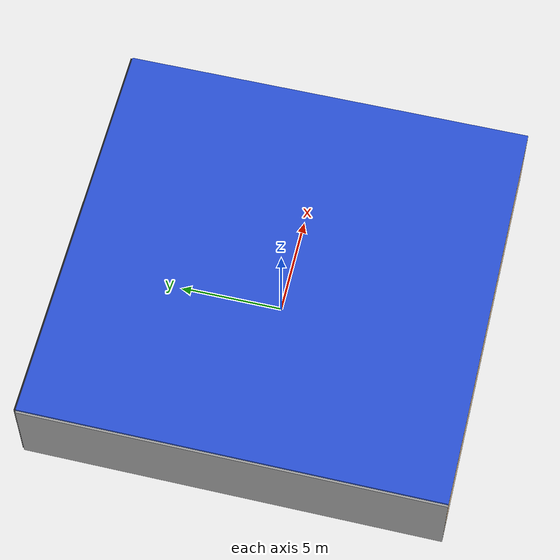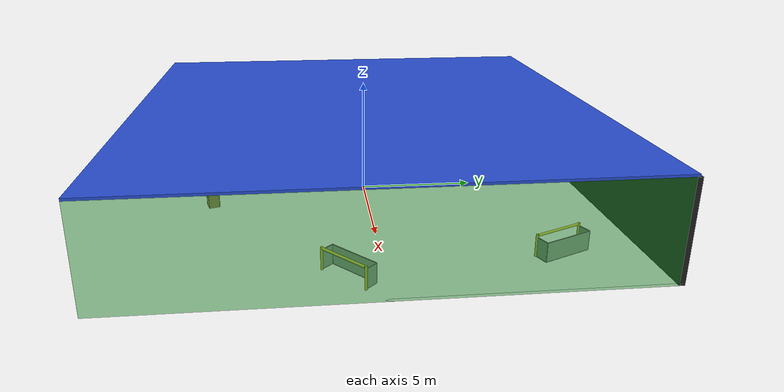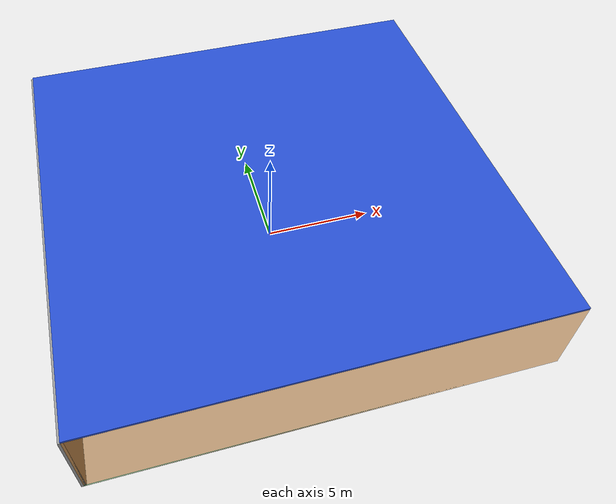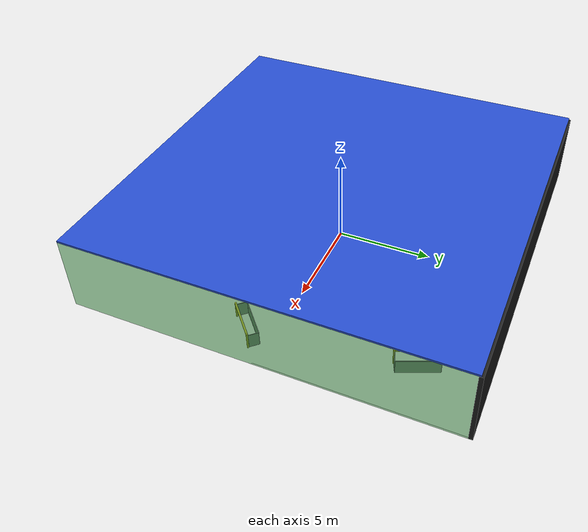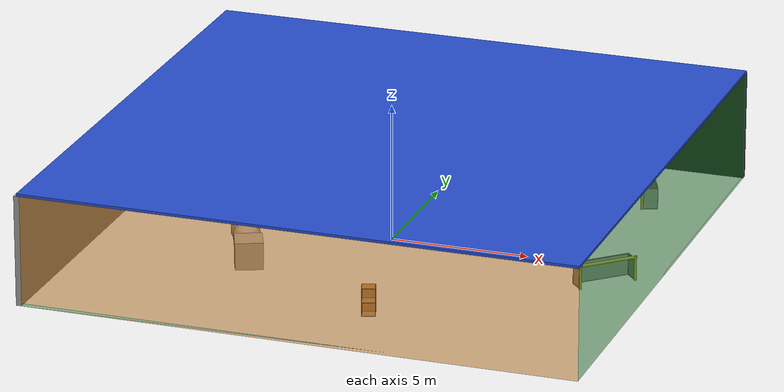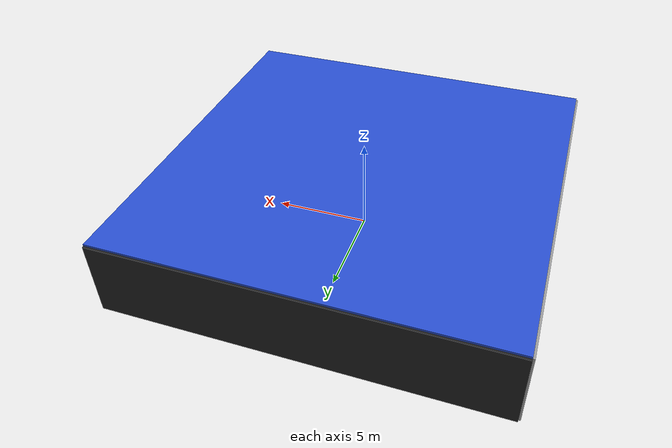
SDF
<sdf version="1.4">
 <world name="default">
  <physics type="ode">
   <max_step_size>0.001</max_step_size>
   <real_time_factor>1</real_time_factor>
   <real_time_update_rate>1000</real_time_update_rate>
   <gravity>0 0 -9.8</gravity>
  </physics>
  <scene><ambient>0.4 0.4 0.4 1</ambient><background>0.7 0.7 0.7 1</background><shadows>1</shadows></scene>
  <model name="Surrounding">
   <static>1</static>
   <link name="Ceiling">
    <collision name="Ceiling_Collision"><geometry><box><size>20 20 0.1</size></box></geometry></collision>
    <visual name="Ceiling_Visual">
     <geometry><box><size>20 20 0.1</size></box></geometry>
     <material>
      <script><uri>file://media/materials/scripts/gazebo.material</uri><name>Gazebo/BlueLaser</name></script>
     </material>
    </visual>
    <pose>0 0 4.05 0 0 0</pose>
   </link>
   <link name="Wall_South">
    <collision name="Wall_South_Collision">
     <geometry><box><size>20 0 4</size></box></geometry>
     <pose>0 0 2 0 -0 0</pose>
    </collision>
    <visual name="Wall_South_Visual">
     <pose>0 0 2 0 -0 0</pose>
     <geometry><box><size>20 0 4</size></box></geometry>
     <material>
      <script>
       <uri>file://media/materials/scripts/gazebo.material</uri>
       <name>Gazebo/OrangeTransparent</name>
      </script>
     </material>
    </visual>
    <velocity_decay><linear>0</linear><angular>0</angular></velocity_decay>
    <pose>0 -10 0 0 -0 0</pose>
   </link>
   <link name="Wall_East">
    <collision name="Wall_21_Collision">
     <geometry><box><size>20 0 4</size></box></geometry>
     <pose>0 0 2 0 -0 0</pose>
    </collision>
    <visual name="Wall_21_Visual">
     <pose>0 0 2 0 -0 0</pose>
     <geometry><box><size>20 0 4</size></box></geometry>
     <material>
      <script><uri>file://media/materials/scripts/gazebo.material</uri><name>Gazebo/GreenTransparent</name></script>
     </material>
    </visual>
    <velocity_decay><linear>0</linear><angular>0</angular></velocity_decay>
    <pose>10 0 0 0 -0 1.5708</pose>
   </link>
   <link name="Wall_North">
    <collision name="Wall_22_Collision">
     <geometry><box><size>20 0.2 4</size></box></geometry>
     <pose>0 0 2 0 -0 0</pose>
    </collision>
    <visual name="Wall_22_Visual">
     <pose>0 0 2 0 -0 0</pose>
     <geometry><box><size>20 0.2 4</size></box></geometry>
     <material>
      <script><uri>file://media/materials/scripts/gazebo.material</uri><name>Gazebo/Black</name></script>
     </material>
    </visual>
    <velocity_decay><linear>0</linear><angular>0</angular></velocity_decay>
    <pose>0 10 0 0 -0 0</pose>
   </link>
   <link name="Wall_West">
    <collision name="Wall_23_Collision">
     <geometry><box><size>20 0.2 4</size></box></geometry>
     <pose>0 0 2 0 -0 0</pose>
    </collision>
    <visual name="Wall_23_Visual">
     <pose>0 0 2 0 -0 0</pose>
     <geometry><box><size>20 0.2 4</size></box></geometry>
     <material>
      <script><uri>file://media/materials/scripts/gazebo.material</uri><name>Gazebo/Grey</name></script>
     </material>
    </visual>
    <velocity_decay><linear>0</linear><angular>0</angular></velocity_decay>
    <pose>-10 0 0 0 0 -1.5708</pose>
   </link>
   <link name="Ground_link">
    <collision name="collision">
     <pose>0 0 .05 0 -0 0</pose>
     <geometry><box><size>20 20 0.1</size></box></geometry>
    </collision>
    <visual name="visual">
     <pose>0 0 .05 0 -0 0</pose>
     <geometry><box><size>20 20 0.1</size></box></geometry>
     <material>
      <script><uri>file://media/materials/scripts/gazebo.material</uri><name>Gazebo/GreenTransparent</name></script>
     </material>
    </visual>
   </link>
   <static>1</static>
  </model>
  <spherical_coordinates>
   <surface_model>EARTH_WGS84</surface_model>
   <latitude_deg>0</latitude_deg>
   <longitude_deg>0</longitude_deg>
   <elevation>0</elevation>
   <heading_deg>0</heading_deg>
  </spherical_coordinates>
  <light name="lightball_0" type="diffuse">
   <diffuse>0.8 0.8 0.8 1</diffuse>
   <specular>0.2 0.2 0.2 1</specular>
   <attenuation>
    <range>100</range>
    <constant>0.7</constant>
    <linear>0.01</linear>
    <quadratic>0.001</quadratic>
   </attenuation>
   <direction>-0.5 0.1 -0.9</direction>
   <pose>-2.81408643411 6.84215206017 2.33543700138 0 0 0</pose>
  </light>
  <light name="lightball_1" type="diffuse">
   <diffuse>0.8 0.8 0.8 1</diffuse>
   <specular>0.2 0.2 0.2 1</specular>
   <attenuation>
    <range>100</range>
    <constant>0.7</constant>
    <linear>0.01</linear>
    <quadratic>0.001</quadratic>
   </attenuation>
   <direction>-0.5 0.1 -0.9</direction>
   <pose>3.57983559335 8.54465658056 2.00376788975 0 0 0</pose>
  </light>
  <light name="lightball_2" type="diffuse">
   <diffuse>0.8 0.8 0.8 1</diffuse>
   <specular>0.2 0.2 0.2 1</specular>
   <attenuation>
    <range>100</range>
    <constant>0.7</constant>
    <linear>0.01</linear>
    <quadratic>0.001</quadratic>
   </attenuation>
   <direction>-0.5 0.1 -0.9</direction>
   <pose>5.225015778 6.08003359184 2.9734572189 0 0 0</pose>
  </light>
  <light name="lightball_3" type="diffuse">
   <diffuse>0.8 0.8 0.8 1</diffuse>
   <specular>0.2 0.2 0.2 1</specular>
   <attenuation>
    <range>100</range>
    <constant>0.7</constant>
    <linear>0.01</linear>
    <quadratic>0.001</quadratic>
   </attenuation>
   <direction>-0.5 0.1 -0.9</direction>
   <pose>3.43438446699 -7.31194628238 1.04856693407 0 0 0</pose>
  </light>
  <include>
   <uri>model://textured_shapes</uri>
   <pose>-4.94349436328 -1.3399297942 0 0 0 0.400725910976</pose>
  </include>
  <include><uri>model://cabinet</uri><pose>1.51960755536 -6.76878360428 0 0 0 1.88182526903</pose></include>
  <include>
   <uri>model://robocup_3Dsim_goal</uri>
   <pose>8.40649768256 -1.52956751604 0 0 0 2.32047920405</pose>
  </include>
  <include>
   <uri>model://robocup_3Dsim_goal</uri>
   <pose>7.028454583 6.69192614119 0 0 0 0.399679858157</pose>
  </include>
 </world>
</sdf>

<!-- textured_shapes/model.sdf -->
<sdf version="1.6">
  <model name="textured_shapes">
    <pose>0 0 0.5 0 0 0</pose>
    <link name="box">
      <pose>0 -1.5 0 0 0 0</pose>
      <collision name="collision">
        <geometry>
          <box>
            <size>1 1 1</size>
          </box>
        </geometry>
      </collision>
      <visual name="visual">
        <geometry>
          <box>
            <size>1 1 1</size>
          </box>
        </geometry>
        <material>
          <script>
            <uri>model://../model_source/models/textured_shapes/materials/scripts</uri>
            <uri>model://../model_source/models/textured_shapes/materials/textures</uri>
            <name>TexturedShape/Squares</name>
          </script>
        </material>
      </visual>
    </link>
    <link name="sphere">
      <collision name="collision">
        <geometry>
          <sphere>
            <radius>0.5</radius>
          </sphere>
        </geometry>
      </collision>
      <visual name="visual">
        <geometry>
          <sphere>
            <radius>0.5</radius>
          </sphere>
        </geometry>
        <material>
          <script>
            <uri>model://../model_source/models/textured_shapes/materials/scripts</uri>
            <uri>model://../model_source/models/textured_shapes/materials/textures</uri>
            <name>TexturedShape/Squares</name>
          </script>
        </material>
      </visual>
    </link>
    <link name="cylinder">
      <pose>0 1.5 0 0 0 0</pose>
      <collision name="collision">
        <geometry>
          <cylinder>
            <radius>0.5</radius>
            <length>1</length>
          </cylinder>
        </geometry>
      </collision>
      <visual name="visual">
        <geometry>
          <cylinder>
            <radius>0.5</radius>
            <length>1</length>
          </cylinder>
        </geometry>
        <material>
          <script>
            <uri>model://../model_source/models/textured_shapes/materials/scripts</uri>
            <uri>model://../model_source/models/textured_shapes/materials/textures</uri>
            <name>TexturedShape/Squares</name>
          </script>
        </material>
      </visual>
    </link>
  </model>
</sdf>

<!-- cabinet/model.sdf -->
<sdf version="1.5">
  <model name="cabinet">
    <static>true</static>
    <link name="cabinet_bottom_plate">
      <inertial>
        <pose>0 0 -1 0 0 0</pose>
        <inertia>
          <ixx>2.050000</ixx>
          <ixy>0</ixy>
          <ixz>0</ixz>
          <iyy>2.050000</iyy>
          <iyz>0</iyz>
          <izz>2.050000</izz>
        </inertia>
        <mass>25.000000</mass>
      </inertial>
      <collision name="cabinet_bottom_plate_geom">
        <pose>0 0 0.010000 0 0 0</pose>
        <geometry>
          <box>
            <size>0.450000 0.450000 0.020000</size>
          </box>
        </geometry>
      </collision>
      <visual name="cabinet_bottom_plate_geom_visual">
        <pose>0 0 0.010000 0 0 0</pose>
        <geometry>
          <box>
            <size>0.450000 0.450000 0.020000</size>
          </box>
        </geometry>
        <material>
          <script>
            <uri>model://media/materials/scripts/gazebo.material</uri>
            <name>Gazebo/Wood</name>
          </script>
        </material>
      </visual>
      <collision name="cabinet_bottom_plate_geom_cabinet_back_plate">
        <pose>0.235000 0 0.510000 0 0 0</pose>
        <geometry>
          <box>
            <size>0.020000 0.450000 1.020000</size>
          </box>
        </geometry>
      </collision>
      <visual name="cabinet_bottom_plate_geom_cabinet_back_plate_visual">
        <pose>0.235000 0 0.510000 0 0 0</pose>
        <geometry>
          <box>
            <size>0.020000 0.450000 1.020000</size>
          </box>
        </geometry>
        <material>
          <script>
            <uri>model://media/materials/scripts/gazebo.material</uri>
            <name>Gazebo/Wood</name>
          </script>
        </material>
      </visual>
      <collision name="cabinet_bottom_plate_geom_cabinet_left_plate">
        <pose>0 0.235000 0.510000 0 0 0</pose>
        <geometry>
          <box>
            <size>0.450000 0.020000 1.020000</size>
          </box>
        </geometry>
      </collision>
      <visual name="cabinet_bottom_plate_geom_cabinet_left_plate_visual">
        <pose>0 0.235000 0.510000 0 0 0</pose>
        <geometry>
          <box>
            <size>0.450000 0.020000 1.020000</size>
          </box>
        </geometry>
        <material>
          <script>
            <uri>model://media/materials/scripts/gazebo.material</uri>
            <name>Gazebo/Wood</name>
          </script>
        </material>
      </visual>
      <collision name="cabinet_bottom_plate_geom_cabinet_middle_plate">
        <pose>0 0 0.510000 0 0 0</pose>
        <geometry>
          <box>
            <size>0.450000 0.450000 0.020000</size>
          </box>
        </geometry>
      </collision>
      <visual name="cabinet_bottom_plate_geom_cabinet_middle_plate_visual">
        <pose>0 0 0.510000 0 0 0</pose>
        <geometry>
          <box>
            <size>0.450000 0.450000 0.020000</size>
          </box>
        </geometry>
        <material>
          <script>
            <uri>model://media/materials/scripts/gazebo.material</uri>
            <name>Gazebo/Wood</name>
          </script>
        </material>
      </visual>
      <collision name="cabinet_bottom_plate_geom_cabinet_right_plate">
        <pose>0 -0.235000 0.510000 0 0 0</pose>
        <geometry>
          <box>
            <size>0.450000 0.020000 1.020000</size>
          </box>
        </geometry>
      </collision>
      <visual name="cabinet_bottom_plate_geom_cabinet_right_plate_visual">
        <pose>0 -0.235000 0.510000 0 0 0</pose>
        <geometry>
          <box>
            <size>0.450000 0.020000 1.020000</size>
          </box>
        </geometry>
        <material>
          <script>
            <uri>model://media/materials/scripts/gazebo.material</uri>
            <name>Gazebo/Wood</name>
          </script>
        </material>
      </visual>
      <collision name="cabinet_bottom_plate_geom_cabinet_top_plate">
        <pose>0 0 1.010000 0 0 0</pose>
        <geometry>
          <box>
            <size>0.450000 0.450000 0.020000</size>
          </box>
        </geometry>
      </collision>
      <visual name="cabinet_bottom_plate_geom_cabinet_top_plate_visual">
        <pose>0 0 1.010000 0 0 0</pose>
        <geometry>
          <box>
            <size>0.450000 0.450000 0.020000</size>
          </box>
        </geometry>
        <material>
          <script>
            <uri>model://media/materials/scripts/gazebo.material</uri>
            <name>Gazebo/Wood</name>
          </script>
        </material>
      </visual>
    </link>
  </model>
</sdf>

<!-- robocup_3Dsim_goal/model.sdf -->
<sdf version="1.5">
  <model name="robocup_3d_goal">
    <static>true</static>
    <link name="left_post">
      <pose>0 1.05 0.45 0 0 0</pose>
      <collision name="collision">
        <geometry>
          <cylinder>
            <radius>0.05</radius>
            <length>0.9</length>
          </cylinder>
        </geometry>
      </collision>
      <visual name="visual">
        <geometry>
          <cylinder>
            <radius>0.05</radius>
            <length>0.9</length>
          </cylinder>
        </geometry>
        <material>
          <script>
            <uri>file://media/materials/scripts/gazebo.material</uri>
            <name>Gazebo/ZincYellow</name>
          </script>
        </material>
      </visual>
    </link>
    <link name="left_support_horiz_lower">
      <pose>0.30 1.05 0.01 0 0 0</pose>
      <collision name="collision">
        <geometry>
          <box>
            <size>0.50 0.02 0.02</size>
          </box>
        </geometry>
      </collision>
      <visual name="visual">
        <geometry>
          <box>
            <size>0.50 0.02 0.02</size>
          </box>
        </geometry>
        <material>
          <script>
            <uri>file://media/materials/scripts/gazebo.material</uri>
            <name>Gazebo/White</name>
          </script>
        </material>
      </visual>
    </link>
    <link name="left_support_horiz_upper">
      <pose>0.30 1.05 0.79 0 0 0</pose>
      <collision name="collision">
        <geometry>
          <box>
            <size>0.50 0.02 0.02</size>
          </box>
        </geometry>
      </collision>
      <visual name="visual">
        <geometry>
          <box>
            <size>0.50 0.02 0.02</size>
          </box>
        </geometry>
        <material>
          <script>
            <uri>file://media/materials/scripts/gazebo.material</uri>
            <name>Gazebo/White</name>
          </script>
        </material>
      </visual>
    </link>
    <link name="left_support_vertical">
      <pose>0.56 1.05 0.4 0 1.5708 0</pose>
      <collision name="collision">
        <geometry>
          <box>
            <size>0.80 0.02 0.02</size>
          </box>
        </geometry>
      </collision>
      <visual name="visual">
        <geometry>
          <box>
            <size>0.80 0.02 0.02</size>
          </box>
        </geometry>
        <material>
          <script>
            <uri>file://media/materials/scripts/gazebo.material</uri>
            <name>Gazebo/White</name>
          </script>
        </material>
      </visual>
    </link>
    <link name="right_support_horiz_lower">
      <pose>0.30 -1.05 0.01 0 0 0</pose>
      <collision name="collision">
        <geometry>
          <box>
            <size>0.50 0.02 0.02</size>
          </box>
        </geometry>
      </collision>
      <visual name="visual">
        <geometry>
          <box>
            <size>0.50 0.02 0.02</size>
          </box>
        </geometry>
        <material>
          <script>
            <uri>file://media/materials/scripts/gazebo.material</uri>
            <name>Gazebo/White</name>
          </script>
        </material>
      </visual>
    </link>
    <link name="right_support_horiz_upper">
      <pose>0.30 -1.05 0.79 0 0 0</pose>
      <collision name="collision">
        <geometry>
          <box>
            <size>0.50 0.02 0.02</size>
          </box>
        </geometry>
      </collision>
      <visual name="visual">
        <geometry>
          <box>
            <size>0.50 0.02 0.02</size>
          </box>
        </geometry>
        <material>
          <script>
            <uri>file://media/materials/scripts/gazebo.material</uri>
            <name>Gazebo/White</name>
          </script>
        </material>
      </visual>
    </link>
    <link name="right_support_vertical">
      <pose>0.56 -1.05 0.4 0 1.5708 0</pose>
      <collision name="collision">
        <geometry>
          <box>
            <size>0.80 0.02 0.02</size>
          </box>
        </geometry>
      </collision>
      <visual name="visual">
        <geometry>
          <box>
            <size>0.80 0.02 0.02</size>
          </box>
        </geometry>
        <material>
          <script>
            <uri>file://media/materials/scripts/gazebo.material</uri>
            <name>Gazebo/White</name>
          </script>
        </material>
      </visual>
    </link>
    <link name="center_support_horiz_lower">
      <pose>0.56 0 0.01 0 1.5708 0</pose>
      <collision name="collision">
        <geometry>
          <box>
            <size>0.02 2.08 0.02</size>
          </box>
        </geometry>
      </collision>
      <visual name="visual">
        <geometry>
          <box>
            <size>0.02 2.08 0.02</size>
          </box>
        </geometry>
        <material>
          <script>
            <uri>file://media/materials/scripts/gazebo.material</uri>
            <name>Gazebo/White</name>
          </script>
        </material>
      </visual>
    </link>
    <link name="center_support_horiz_upper">
      <pose>0.56 0 0.79 0 1.5708 0</pose>
      <collision name="collision">
        <geometry>
          <box>
            <size>0.02 2.08 0.02</size>
          </box>
        </geometry>
      </collision>
      <visual name="visual">
        <geometry>
          <box>
            <size>0.02 2.08 0.02</size>
          </box>
        </geometry>
        <material>
          <script>
            <uri>file://media/materials/scripts/gazebo.material</uri>
            <name>Gazebo/White</name>
          </script>
        </material>
      </visual>
    </link>
    <link name="right_post">
      <pose>0 -1.05 0.45 0 0 0</pose>
      <collision name="collision">
        <geometry>
          <cylinder>
            <radius>0.05</radius>
            <length>0.9</length>
          </cylinder>
        </geometry>
      </collision>
      <visual name="visual">
        <geometry>
          <cylinder>
            <radius>0.05</radius>
            <length>0.9</length>
          </cylinder>
        </geometry>
        <material>
          <script>
            <uri>file://media/materials/scripts/gazebo.material</uri>
            <name>Gazebo/ZincYellow</name>
          </script>
        </material>
      </visual>
    </link>
    <link name="crossbar">
      <pose>0 0 0.85 1.57 1.57 0</pose>
      <collision name="collision">
        <geometry>
          <cylinder>
            <radius>0.05</radius>
            <length>2.0</length>
          </cylinder>
        </geometry>
      </collision>
      <visual name="visual">
        <geometry>
          <cylinder>
            <radius>0.05</radius>
            <length>2.0</length>
          </cylinder>
        </geometry>
        <material>
          <script>
            <uri>file://media/materials/scripts/gazebo.material</uri>
            <name>Gazebo/ZincYellow</name>
          </script>
        </material>
      </visual>
    </link>
    <link name="center_net">
      <pose>0.56 0 0.40 0 0 0</pose>
      <collision name="collision">
        <geometry>
          <box>
            <size>0.01 2.1 0.80</size>
          </box>
        </geometry>
      </collision>
      <visual name="visual">
        <geometry>
          <box>
            <size>0.01 2.1 0.80</size>
          </box>
        </geometry>
        <material>
          <script>
            <uri>model://../model_source/models/robocup09_spl_field/materials/scripts/</uri>
            <uri>model://../model_source/models/robocup09_spl_field/materials/textures/</uri>
            <name>RoboCup/Net</name>
          </script>
        </material>
      </visual>
    </link>
    <link name="left_net">
      <pose>0.30 1.05 0.40 0 0 0</pose>
      <collision name="collision">
        <geometry>
          <box>
            <size>0.50 0.01 0.76</size>
          </box>
        </geometry>
      </collision>
      <visual name="visual">
        <geometry>
          <box>
            <size>0.50 0.01 0.76</size>
          </box>
        </geometry>
        <material>
          <script>
            <uri>model://../model_source/models/robocup09_spl_field/materials/scripts/</uri>
            <uri>model://../model_source/models/robocup09_spl_field/materials/textures/</uri>
            <name>RoboCup/Net</name>
          </script>
        </material>
      </visual>
    </link>
    <link name="right_net">
      <pose>0.30 -1.05 0.40 0 0 0</pose>
      <collision name="collision">
        <geometry>
          <box>
            <size>0.50 0.01 0.76</size>
          </box>
        </geometry>
      </collision>
      <visual name="visual">
        <geometry>
          <box>
            <size>0.50 0.01 0.76</size>
          </box>
        </geometry>
        <material>
          <script>
            <uri>model://../model_source/models/robocup09_spl_field/materials/scripts/</uri>
            <uri>model://../model_source/models/robocup09_spl_field/materials/textures/</uri>
            <name>RoboCup/Net</name>
          </script>
        </material>
      </visual>
    </link>
  </model>
</sdf>
